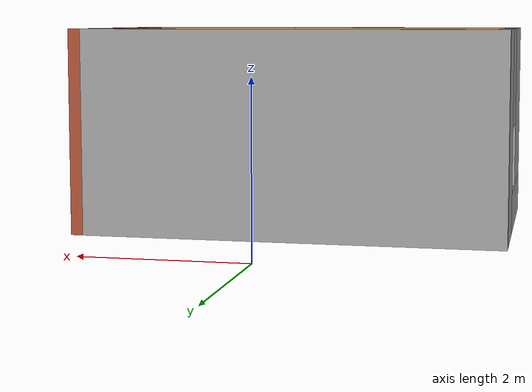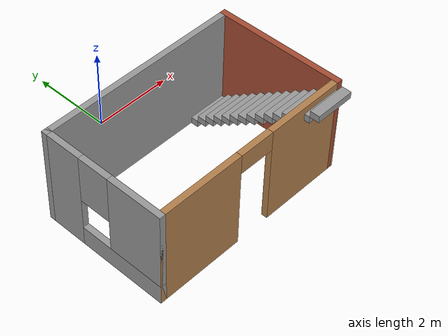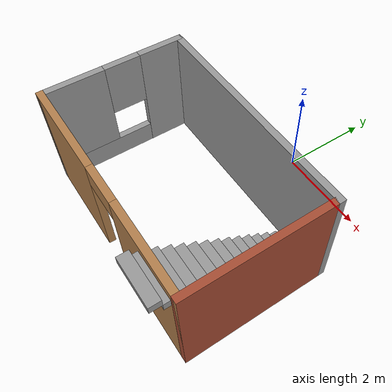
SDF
<?xml version='1.0'?>
<sdf version='1.7'>
  <model name='test_gazebo'>
    <pose>-0.03 -2.45 0 0 -0 0</pose>
    <link name='Stairs_0'>
      <visual name='Stairs_0_Visual_0'>
        <pose>1.96 0.933333 0.083333 0 -0 0</pose>
        <geometry>
          <box>
            <size>1 0.233333 0.166667</size>
          </box>
        </geometry>
        <material>
          <script>
            <uri>file://media/materials/scripts/gazebo.material</uri>
            <name>Gazebo/Grey</name>
          </script>
          <ambient>1 1 1 1</ambient>
        </material>
        <meta>
          <layer>0</layer>
        </meta>
      </visual>
      <collision name='Stairs_0_Collision_0'>
        <geometry>
          <box>
            <size>1 0.233333 0.166667</size>
          </box>
        </geometry>
        <pose>1.96 0.933333 0.083333 0 -0 0</pose>
      </collision>
      <visual name='Stairs_0_Visual_1'>
        <pose>1.96 0.7 0.25 0 -0 0</pose>
        <geometry>
          <box>
            <size>1 0.233333 0.166667</size>
          </box>
        </geometry>
        <material>
          <script>
            <uri>file://media/materials/scripts/gazebo.material</uri>
            <name>Gazebo/Grey</name>
          </script>
          <ambient>1 1 1 1</ambient>
        </material>
        <meta>
          <layer>0</layer>
        </meta>
      </visual>
      <collision name='Stairs_0_Collision_1'>
        <geometry>
          <box>
            <size>1 0.233333 0.166667</size>
          </box>
        </geometry>
        <pose>1.96 0.7 0.25 0 -0 0</pose>
      </collision>
      <visual name='Stairs_0_Visual_2'>
        <pose>1.96 0.466667 0.416667 0 -0 0</pose>
        <geometry>
          <box>
            <size>1 0.233333 0.166667</size>
          </box>
        </geometry>
        <material>
          <script>
            <uri>file://media/materials/scripts/gazebo.material</uri>
            <name>Gazebo/Grey</name>
          </script>
          <ambient>1 1 1 1</ambient>
        </material>
        <meta>
          <layer>0</layer>
        </meta>
      </visual>
      <collision name='Stairs_0_Collision_2'>
        <geometry>
          <box>
            <size>1 0.233333 0.166667</size>
          </box>
        </geometry>
        <pose>1.96 0.466667 0.416667 0 -0 0</pose>
      </collision>
      <visual name='Stairs_0_Visual_3'>
        <pose>1.96 0.233333 0.583333 0 -0 0</pose>
        <geometry>
          <box>
            <size>1 0.233333 0.166667</size>
          </box>
        </geometry>
        <material>
          <script>
            <uri>file://media/materials/scripts/gazebo.material</uri>
            <name>Gazebo/Grey</name>
          </script>
          <ambient>1 1 1 1</ambient>
        </material>
        <meta>
          <layer>0</layer>
        </meta>
      </visual>
      <collision name='Stairs_0_Collision_3'>
        <geometry>
          <box>
            <size>1 0.233333 0.166667</size>
          </box>
        </geometry>
        <pose>1.96 0.233333 0.583333 0 -0 0</pose>
      </collision>
      <visual name='Stairs_0_Visual_4'>
        <pose>1.96 0 0.75 0 -0 0</pose>
        <geometry>
          <box>
            <size>1 0.233333 0.166667</size>
          </box>
        </geometry>
        <material>
          <script>
            <uri>file://media/materials/scripts/gazebo.material</uri>
            <name>Gazebo/Grey</name>
          </script>
          <ambient>1 1 1 1</ambient>
        </material>
        <meta>
          <layer>0</layer>
        </meta>
      </visual>
      <collision name='Stairs_0_Collision_4'>
        <geometry>
          <box>
            <size>1 0.233333 0.166667</size>
          </box>
        </geometry>
        <pose>1.96 0 0.75 0 -0 0</pose>
      </collision>
      <visual name='Stairs_0_Visual_5'>
        <pose>1.96 -0.233333 0.916667 0 -0 0</pose>
        <geometry>
          <box>
            <size>1 0.233333 0.166667</size>
          </box>
        </geometry>
        <material>
          <script>
            <uri>file://media/materials/scripts/gazebo.material</uri>
            <name>Gazebo/Grey</name>
          </script>
          <ambient>1 1 1 1</ambient>
        </material>
        <meta>
          <layer>0</layer>
        </meta>
      </visual>
      <collision name='Stairs_0_Collision_5'>
        <geometry>
          <box>
            <size>1 0.233333 0.166667</size>
          </box>
        </geometry>
        <pose>1.96 -0.233333 0.916667 0 -0 0</pose>
      </collision>
      <visual name='Stairs_0_Visual_6'>
        <pose>1.96 -0.466667 1.08333 0 -0 0</pose>
        <geometry>
          <box>
            <size>1 0.233333 0.166667</size>
          </box>
        </geometry>
        <material>
          <script>
            <uri>file://media/materials/scripts/gazebo.material</uri>
            <name>Gazebo/Grey</name>
          </script>
          <ambient>1 1 1 1</ambient>
        </material>
        <meta>
          <layer>0</layer>
        </meta>
      </visual>
      <collision name='Stairs_0_Collision_6'>
        <geometry>
          <box>
            <size>1 0.233333 0.166667</size>
          </box>
        </geometry>
        <pose>1.96 -0.466667 1.08333 0 -0 0</pose>
      </collision>
      <visual name='Stairs_0_Visual_7'>
        <pose>1.96 -0.7 1.25 0 -0 0</pose>
        <geometry>
          <box>
            <size>1 0.233333 0.166667</size>
          </box>
        </geometry>
        <material>
          <script>
            <uri>file://media/materials/scripts/gazebo.material</uri>
            <name>Gazebo/Grey</name>
          </script>
          <ambient>1 1 1 1</ambient>
        </material>
        <meta>
          <layer>0</layer>
        </meta>
      </visual>
      <collision name='Stairs_0_Collision_7'>
        <geometry>
          <box>
            <size>1 0.233333 0.166667</size>
          </box>
        </geometry>
        <pose>1.96 -0.7 1.25 0 -0 0</pose>
      </collision>
      <visual name='Stairs_0_Visual_8'>
        <pose>1.96 -0.933333 1.41667 0 -0 0</pose>
        <geometry>
          <box>
            <size>1 0.233333 0.166667</size>
          </box>
        </geometry>
        <material>
          <script>
            <uri>file://media/materials/scripts/gazebo.material</uri>
            <name>Gazebo/Grey</name>
          </script>
          <ambient>1 1 1 1</ambient>
        </material>
        <meta>
          <layer>0</layer>
        </meta>
      </visual>
      <collision name='Stairs_0_Collision_8'>
        <geometry>
          <box>
            <size>1 0.233333 0.166667</size>
          </box>
        </geometry>
        <pose>1.96 -0.933333 1.41667 0 -0 0</pose>
      </collision>
      <visual name='Stairs_0_Visual_9'>
        <pose>1.96 -1.16667 1.58333 0 -0 0</pose>
        <geometry>
          <box>
            <size>1 0.233333 0.166667</size>
          </box>
        </geometry>
        <material>
          <script>
            <uri>file://media/materials/scripts/gazebo.material</uri>
            <name>Gazebo/Grey</name>
          </script>
          <ambient>1 1 1 1</ambient>
        </material>
        <meta>
          <layer>0</layer>
        </meta>
      </visual>
      <collision name='Stairs_0_Collision_9'>
        <geometry>
          <box>
            <size>1 0.233333 0.166667</size>
          </box>
        </geometry>
        <pose>1.96 -1.16667 1.58333 0 -0 0</pose>
      </collision>
      <visual name='Stairs_0_Visual_10'>
        <pose>1.96 -1.4 1.75 0 -0 0</pose>
        <geometry>
          <box>
            <size>1 0.233333 0.166667</size>
          </box>
        </geometry>
        <material>
          <script>
            <uri>file://media/materials/scripts/gazebo.material</uri>
            <name>Gazebo/Grey</name>
          </script>
          <ambient>1 1 1 1</ambient>
        </material>
        <meta>
          <layer>0</layer>
        </meta>
      </visual>
      <collision name='Stairs_0_Collision_10'>
        <geometry>
          <box>
            <size>1 0.233333 0.166667</size>
          </box>
        </geometry>
        <pose>1.96 -1.4 1.75 0 -0 0</pose>
      </collision>
      <visual name='Stairs_0_Visual_11'>
        <pose>1.96 -1.63333 1.91667 0 -0 0</pose>
        <geometry>
          <box>
            <size>1 0.233333 0.166667</size>
          </box>
        </geometry>
        <material>
          <script>
            <uri>file://media/materials/scripts/gazebo.material</uri>
            <name>Gazebo/Grey</name>
          </script>
          <ambient>1 1 1 1</ambient>
        </material>
        <meta>
          <layer>0</layer>
        </meta>
      </visual>
      <collision name='Stairs_0_Collision_11'>
        <geometry>
          <box>
            <size>1 0.233333 0.166667</size>
          </box>
        </geometry>
        <pose>1.96 -1.63333 1.91667 0 -0 0</pose>
      </collision>
      <visual name='Stairs_0_Visual_12'>
        <pose>1.96 -1.86667 2.08333 0 -0 0</pose>
        <geometry>
          <box>
            <size>1 0.233333 0.166667</size>
          </box>
        </geometry>
        <material>
          <script>
            <uri>file://media/materials/scripts/gazebo.material</uri>
            <name>Gazebo/Grey</name>
          </script>
          <ambient>1 1 1 1</ambient>
        </material>
        <meta>
          <layer>0</layer>
        </meta>
      </visual>
      <collision name='Stairs_0_Collision_12'>
        <geometry>
          <box>
            <size>1 0.233333 0.166667</size>
          </box>
        </geometry>
        <pose>1.96 -1.86667 2.08333 0 -0 0</pose>
      </collision>
      <visual name='Stairs_0_Visual_13'>
        <pose>1.96 -2.1 2.25 0 -0 0</pose>
        <geometry>
          <box>
            <size>1 0.233333 0.166667</size>
          </box>
        </geometry>
        <material>
          <script>
            <uri>file://media/materials/scripts/gazebo.material</uri>
            <name>Gazebo/Grey</name>
          </script>
          <ambient>1 1 1 1</ambient>
        </material>
        <meta>
          <layer>0</layer>
        </meta>
      </visual>
      <collision name='Stairs_0_Collision_13'>
        <geometry>
          <box>
            <size>1 0.233333 0.166667</size>
          </box>
        </geometry>
        <pose>1.96 -2.1 2.25 0 -0 0</pose>
      </collision>
      <visual name='Stairs_0_Visual_14'>
        <pose>1.96 -2.33333 2.41667 0 -0 0</pose>
        <geometry>
          <box>
            <size>1 0.233333 0.166667</size>
          </box>
        </geometry>
        <material>
          <script>
            <uri>file://media/materials/scripts/gazebo.material</uri>
            <name>Gazebo/Grey</name>
          </script>
          <ambient>1 1 1 1</ambient>
        </material>
        <meta>
          <layer>0</layer>
        </meta>
      </visual>
      <collision name='Stairs_0_Collision_14'>
        <geometry>
          <box>
            <size>1 0.233333 0.166667</size>
          </box>
        </geometry>
        <pose>1.96 -2.33333 2.41667 0 -0 0</pose>
      </collision>
    </link>
    <link name='Wall_0'>
      <collision name='Wall_0_Collision'>
        <geometry>
          <box>
            <size>5.25 0.15 2.5</size>
          </box>
        </geometry>
        <pose>0 0 1.25 0 -0 0</pose>
      </collision>
      <visual name='Wall_0_Visual'>
        <pose>0 0 1.25 0 -0 0</pose>
        <geometry>
          <box>
            <size>5.25 0.15 2.5</size>
          </box>
        </geometry>
        <material>
          <script>
            <uri>file://media/materials/scripts/gazebo.material</uri>
            <name>Gazebo/Grey</name>
          </script>
          <ambient>1 1 1 1</ambient>
        </material>
        <meta>
          <layer>0</layer>
        </meta>
      </visual>
      <pose>-0 1.09 0 0 -0 3.14159</pose>
    </link>
    <link name='Wall_1'>
      <pose>-2.55 -0.46 0 0 -0 -1.5708</pose>
      <visual name='Wall_1_Visual_0'>
        <pose>-1.1025 0 1.25 0 -0 0</pose>
        <geometry>
          <box>
            <size>1.045 0.15 2.5</size>
          </box>
        </geometry>
        <material>
          <script>
            <uri>file://media/materials/scripts/gazebo.material</uri>
            <name>Gazebo/Grey</name>
          </script>
          <ambient>1 1 1 1</ambient>
        </material>
        <meta>
          <layer>0</layer>
        </meta>
      </visual>
      <collision name='Wall_1_Collision_0'>
        <geometry>
          <box>
            <size>1.045 0.15 2.5</size>
          </box>
        </geometry>
        <pose>-1.1025 0 1.25 0 -0 0</pose>
      </collision>
      <visual name='Wall_1_Visual_1'>
        <pose>0.5225 0 0.25 0 -0 0</pose>
        <geometry>
          <box>
            <size>2.205 0.15 0.5</size>
          </box>
        </geometry>
        <material>
          <script>
            <uri>file://media/materials/scripts/gazebo.material</uri>
            <name>Gazebo/Grey</name>
          </script>
          <ambient>1 1 1 1</ambient>
        </material>
        <meta>
          <layer>0</layer>
        </meta>
      </visual>
      <collision name='Wall_1_Collision_1'>
        <geometry>
          <box>
            <size>2.205 0.15 0.5</size>
          </box>
        </geometry>
        <pose>0.5225 0 0.25 0 -0 0</pose>
      </collision>
      <visual name='Wall_1_Visual_2'>
        <pose>0.9225 0 1.5 0 -0 0</pose>
        <geometry>
          <box>
            <size>1.405 0.15 2</size>
          </box>
        </geometry>
        <material>
          <script>
            <uri>file://media/materials/scripts/gazebo.material</uri>
            <name>Gazebo/Grey</name>
          </script>
          <ambient>1 1 1 1</ambient>
        </material>
        <meta>
          <layer>0</layer>
        </meta>
      </visual>
      <collision name='Wall_1_Collision_2'>
        <geometry>
          <box>
            <size>1.405 0.15 2</size>
          </box>
        </geometry>
        <pose>0.9225 0 1.5 0 -0 0</pose>
      </collision>
      <visual name='Wall_1_Visual_3'>
        <pose>-0.18 0 1.9 0 -0 0</pose>
        <geometry>
          <box>
            <size>0.8 0.15 1.2</size>
          </box>
        </geometry>
        <material>
          <script>
            <uri>file://media/materials/scripts/gazebo.material</uri>
            <name>Gazebo/Grey</name>
          </script>
          <ambient>1 1 1 1</ambient>
        </material>
        <meta>
          <layer>0</layer>
        </meta>
      </visual>
      <collision name='Wall_1_Collision_3'>
        <geometry>
          <box>
            <size>0.8 0.15 1.2</size>
          </box>
        </geometry>
        <pose>-0.18 0 1.9 0 -0 0</pose>
      </collision>
    </link>
    <link name='Wall_2'>
      <pose>-0 -2.01 0 0 -0 0</pose>
      <visual name='Wall_2_Visual_0'>
        <pose>-1.5125 0 1.25 0 -0 0</pose>
        <geometry>
          <box>
            <size>2.225 0.15 2.5</size>
          </box>
        </geometry>
        <material>
          <script>
            <uri>file://media/materials/scripts/gazebo.material</uri>
            <name>Gazebo/Wood</name>
          </script>
          <ambient>1 1 1 1</ambient>
        </material>
        <meta>
          <layer>0</layer>
        </meta>
      </visual>
      <collision name='Wall_2_Collision_0'>
        <geometry>
          <box>
            <size>2.225 0.15 2.5</size>
          </box>
        </geometry>
        <pose>-1.5125 0 1.25 0 -0 0</pose>
      </collision>
      <visual name='Wall_2_Visual_1'>
        <pose>1.5625 0 1.25 0 -0 0</pose>
        <geometry>
          <box>
            <size>2.125 0.15 2.5</size>
          </box>
        </geometry>
        <material>
          <script>
            <uri>file://media/materials/scripts/gazebo.material</uri>
            <name>Gazebo/Wood</name>
          </script>
          <ambient>1 1 1 1</ambient>
        </material>
        <meta>
          <layer>0</layer>
        </meta>
      </visual>
      <collision name='Wall_2_Collision_1'>
        <geometry>
          <box>
            <size>2.125 0.15 2.5</size>
          </box>
        </geometry>
        <pose>1.5625 0 1.25 0 -0 0</pose>
      </collision>
      <visual name='Wall_2_Visual_2'>
        <pose>0.05 0 2.25 0 -0 0</pose>
        <geometry>
          <box>
            <size>0.9 0.15 0.5</size>
          </box>
        </geometry>
        <material>
          <script>
            <uri>file://media/materials/scripts/gazebo.material</uri>
            <name>Gazebo/Wood</name>
          </script>
          <ambient>1 1 1 1</ambient>
        </material>
        <meta>
          <layer>0</layer>
        </meta>
      </visual>
      <collision name='Wall_2_Collision_2'>
        <geometry>
          <box>
            <size>0.9 0.15 0.5</size>
          </box>
        </geometry>
        <pose>0.05 0 2.25 0 -0 0</pose>
      </collision>
    </link>
    <link name='Wall_3'>
      <collision name='Wall_3_Collision'>
        <geometry>
          <box>
            <size>3.25 0.15 2.5</size>
          </box>
        </geometry>
        <pose>0 0 1.25 0 -0 0</pose>
      </collision>
      <visual name='Wall_3_Visual'>
        <pose>0 0 1.25 0 -0 0</pose>
        <geometry>
          <box>
            <size>3.25 0.15 2.5</size>
          </box>
        </geometry>
        <material>
          <script>
            <uri>file://media/materials/scripts/gazebo.material</uri>
            <name>Gazebo/Bricks</name>
          </script>
          <ambient>1 1 1 1</ambient>
        </material>
        <meta>
          <layer>0</layer>
        </meta>
      </visual>
      <pose>2.55 -0.46 0 0 -0 1.5708</pose>
    </link>
    <static>1</static>
  </model>
</sdf>
